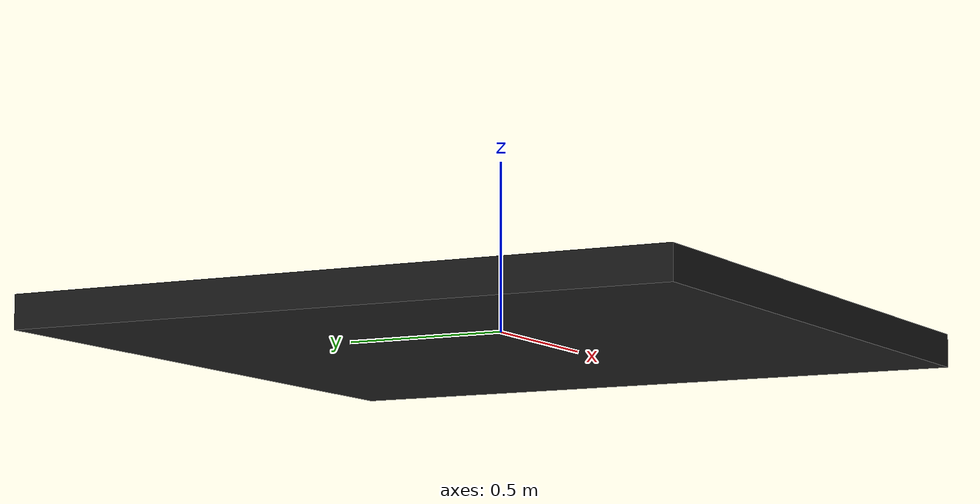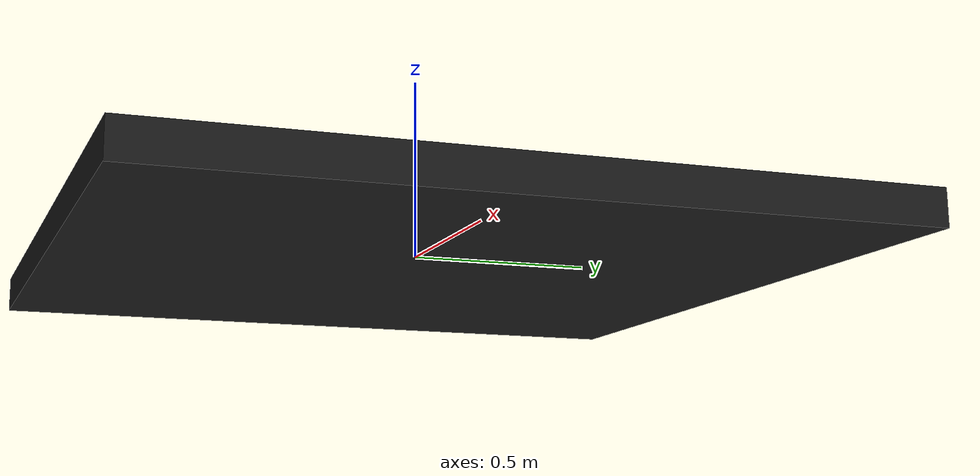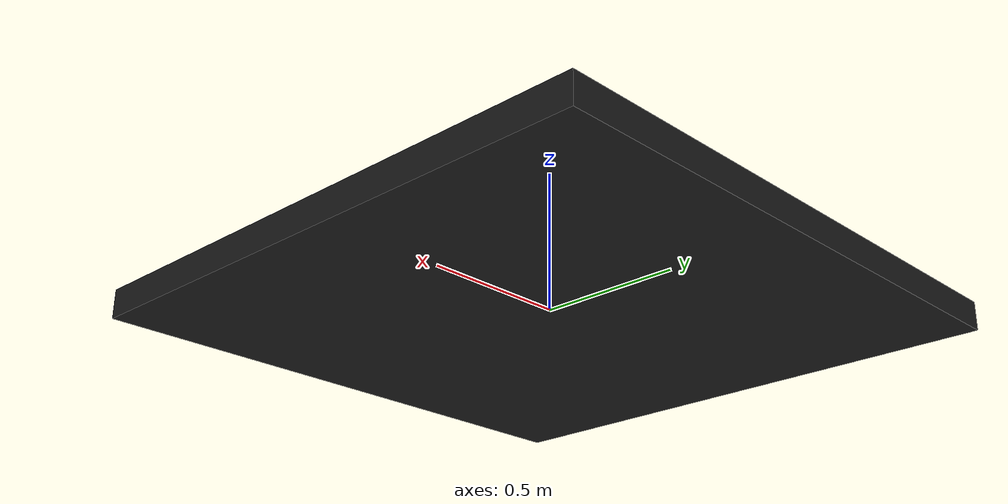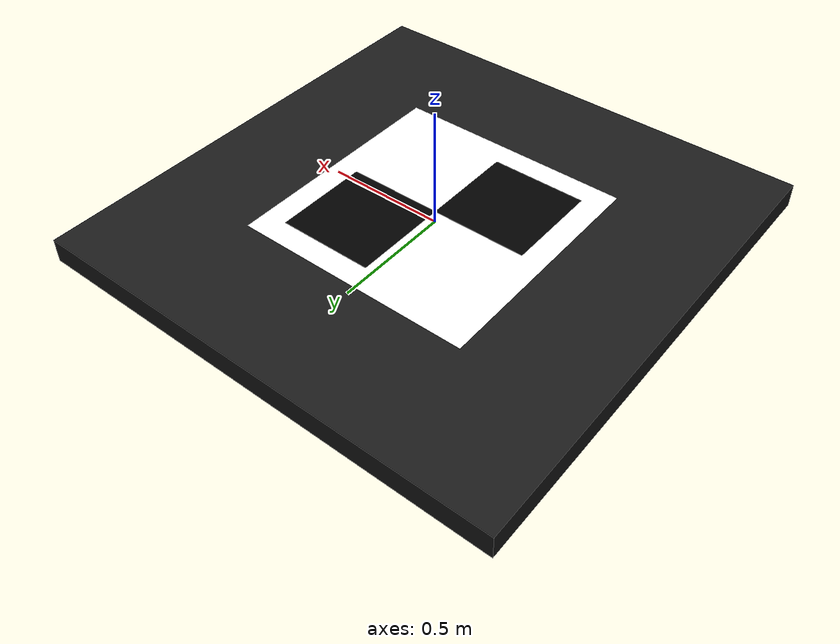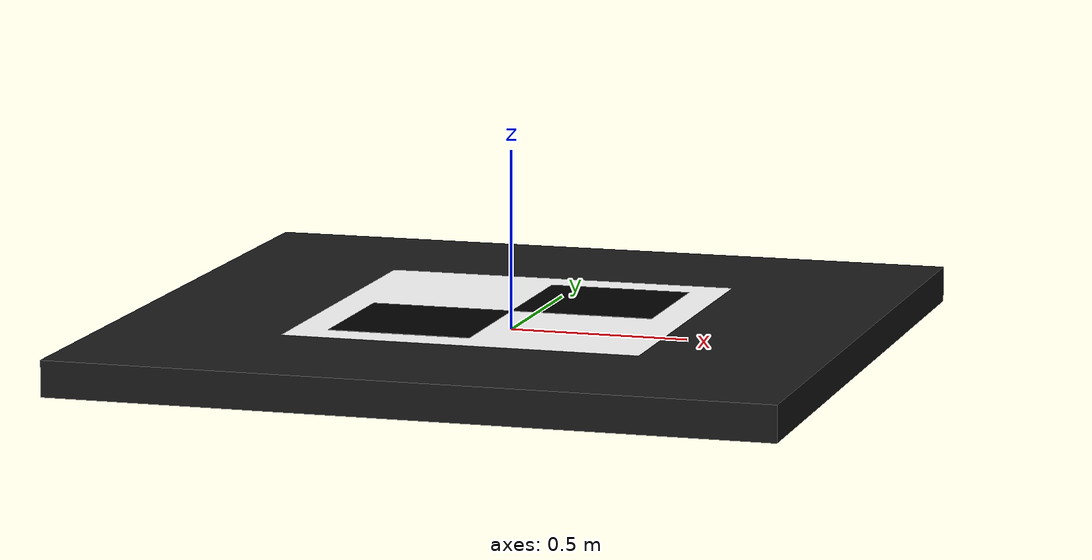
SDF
<?xml version="1.0" ?>
<sdf version="1.9">
  <model name="landing_pad">
    <static>true</static>
    <link name="base_link">
      <visual name="platform_visual">
        <geometry>
          <box>
            <size>2.0 2.0 0.1</size>
          </box>
        </geometry>
        <material>
          <diffuse>0.1 0.1 0.1 1</diffuse>
          <specular>0.5 0.5 0.5 1</specular>
        </material>
      </visual>
      <collision name="platform_collision">
        <geometry>
          <box>
            <size>2.0 2.0 0.1</size>
          </box>
        </geometry>
      </collision>

      <!-- Simulated ArUco Marker (White Square with Black Border) -->
      <!-- In a real world, we would use a texture. Here we use geometry. -->
      <visual name="aruco_white_base">
        <pose>0 0 0.051 0 0 0</pose>
        <geometry>
          <box>
            <size>1.0 1.0 0.001</size>
          </box>
        </geometry>
        <material>
          <diffuse>1 1 1 1</diffuse>
        </material>
      </visual>

      <visual name="aruco_black_pattern_1">
        <pose>0.2 0.2 0.052 0 0 0</pose>
        <geometry>
          <box>
            <size>0.4 0.4 0.001</size>
          </box>
        </geometry>
        <material>
          <diffuse>0 0 0 1</diffuse>
        </material>
      </visual>

       <visual name="aruco_black_pattern_2">
        <pose>-0.2 -0.2 0.052 0 0 0</pose>
        <geometry>
          <box>
            <size>0.4 0.4 0.001</size>
          </box>
        </geometry>
        <material>
          <diffuse>0 0 0 1</diffuse>
        </material>
      </visual>
    </link>
  </model>
</sdf>
